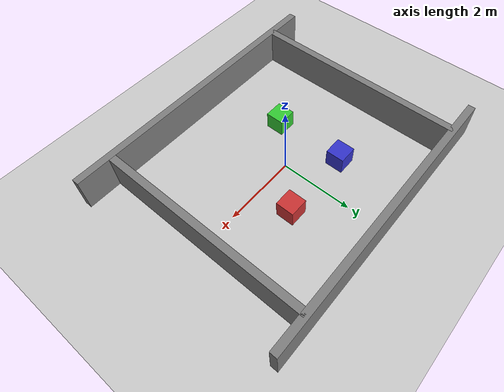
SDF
<?xml version="1.0" ?>
<sdf version="1.7">
  <world name="multi_robot_world">

    <!-- Physics -->
    <physics type="ode">
      <real_time_update_rate>1000.0</real_time_update_rate>
      <max_step_size>0.001</max_step_size>
      <real_time_factor>1</real_time_factor>
      <ode>
        <solver>
          <type>quick</type>
          <iters>150</iters>
          <precon_iters>0</precon_iters>
          <sor>1.400000</sor>
          <use_dynamic_moi_rescaling>1</use_dynamic_moi_rescaling>
        </solver>
        <constraints>
          <cfm>0.00001</cfm>
          <erp>0.2</erp>
          <contact_max_correcting_vel>2000.000000</contact_max_correcting_vel>
          <contact_surface_layer>0.01000</contact_surface_layer>
        </constraints>
      </ode>
    </physics>

    <!-- Lighting -->
    <include>
      <uri>model://sun</uri>
    </include>

    <!-- Ground plane -->
    <include>
      <uri>model://ground_plane</uri>
    </include>

    <!-- Boundary walls so robots don't wander off -->
    <!-- North wall -->
    <model name="wall_north">
      <static>true</static>
      <pose>0 3 0.5 0 0 0</pose>
      <link name="link">
        <collision name="col"><geometry><box><size>8 0.2 1</size></box></geometry></collision>
        <visual name="vis">
          <geometry><box><size>8 0.2 1</size></box></geometry>
          <material><ambient>0.5 0.5 0.5 1</ambient></material>
        </visual>
      </link>
    </model>

    <!-- South wall -->
    <model name="wall_south">
      <static>true</static>
      <pose>0 -3 0.5 0 0 0</pose>
      <link name="link">
        <collision name="col"><geometry><box><size>8 0.2 1</size></box></geometry></collision>
        <visual name="vis">
          <geometry><box><size>8 0.2 1</size></box></geometry>
          <material><ambient>0.5 0.5 0.5 1</ambient></material>
        </visual>
      </link>
    </model>

    <!-- East wall -->
    <model name="wall_east">
      <static>true</static>
      <pose>3 0 0.5 0 0 1.5708</pose>
      <link name="link">
        <collision name="col"><geometry><box><size>6 0.2 1</size></box></geometry></collision>
        <visual name="vis">
          <geometry><box><size>6 0.2 1</size></box></geometry>
          <material><ambient>0.5 0.5 0.5 1</ambient></material>
        </visual>
      </link>
    </model>

    <!-- West wall -->
    <model name="wall_west">
      <static>true</static>
      <pose>-3 0 0.5 0 0 1.5708</pose>
      <link name="link">
        <collision name="col"><geometry><box><size>6 0.2 1</size></box></geometry></collision>
        <visual name="vis">
          <geometry><box><size>6 0.2 1</size></box></geometry>
          <material><ambient>0.5 0.5 0.5 1</ambient></material>
        </visual>
      </link>
    </model>

    <!-- Interior obstacles (give Nav2 something to plan around) -->
    <model name="box_A">
      <static>true</static>
      <pose>1.0 1.0 0.25 0 0 0</pose>
      <link name="link">
        <collision name="col"><geometry><box><size>0.5 0.5 0.5</size></box></geometry></collision>
        <visual name="vis">
          <geometry><box><size>0.5 0.5 0.5</size></box></geometry>
          <material><ambient>0.8 0.2 0.2 1</ambient></material>
        </visual>
      </link>
    </model>

    <model name="box_B">
      <static>true</static>
      <pose>-1.0 -1.0 0.25 0 0 0</pose>
      <link name="link">
        <collision name="col"><geometry><box><size>0.5 0.5 0.5</size></box></geometry></collision>
        <visual name="vis">
          <geometry><box><size>0.5 0.5 0.5</size></box></geometry>
          <material><ambient>0.2 0.8 0.2 1</ambient></material>
        </visual>
      </link>
    </model>

    <model name="box_C">
      <static>true</static>
      <pose>-1.0 1.0 0.25 0 0 0</pose>
      <link name="link">
        <collision name="col"><geometry><box><size>0.5 0.5 0.5</size></box></geometry></collision>
        <visual name="vis">
          <geometry><box><size>0.5 0.5 0.5</size></box></geometry>
          <material><ambient>0.2 0.2 0.8 1</ambient></material>
        </visual>
      </link>
    </model>

  </world>
</sdf>
